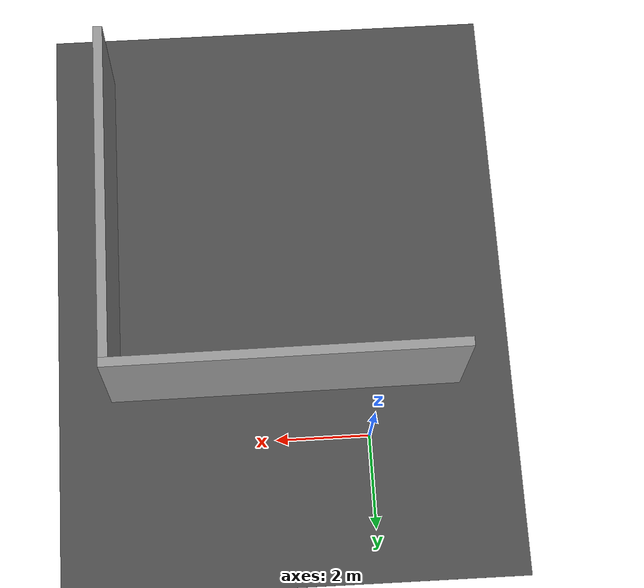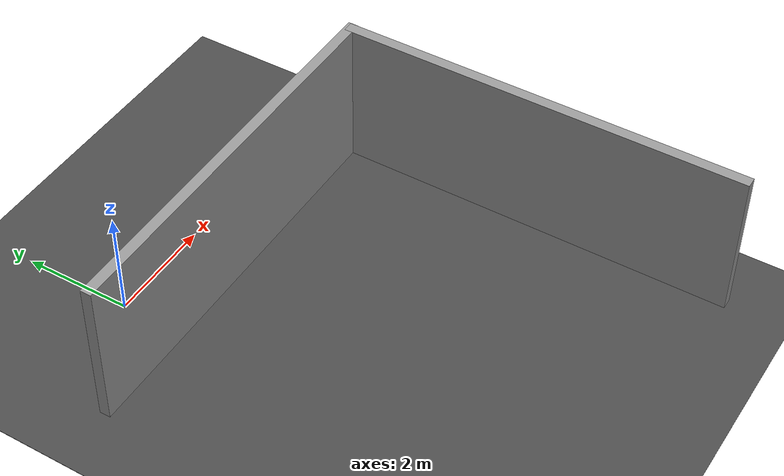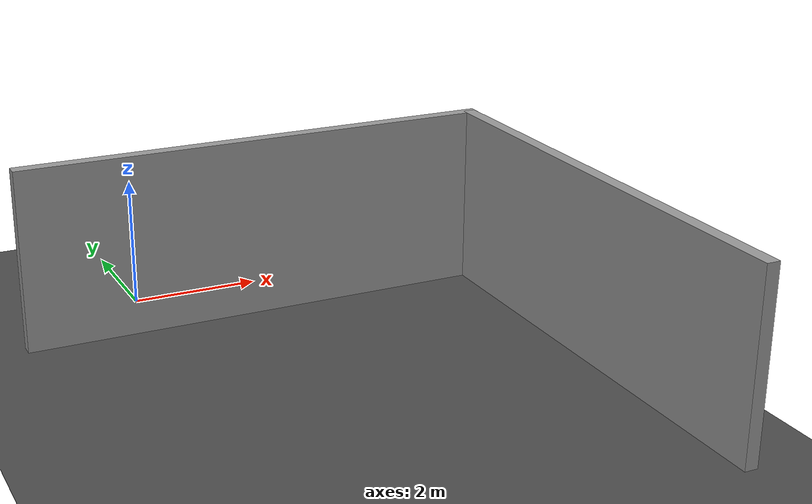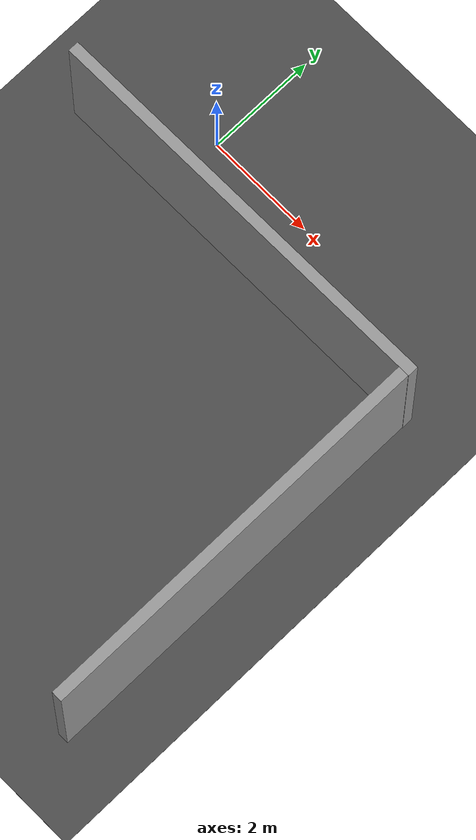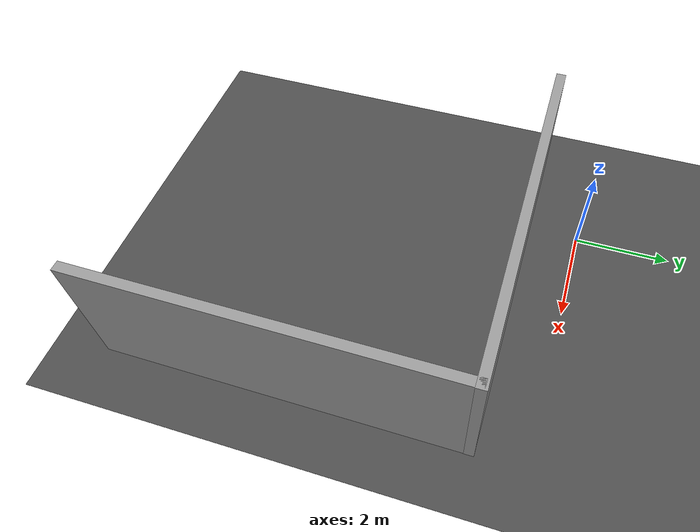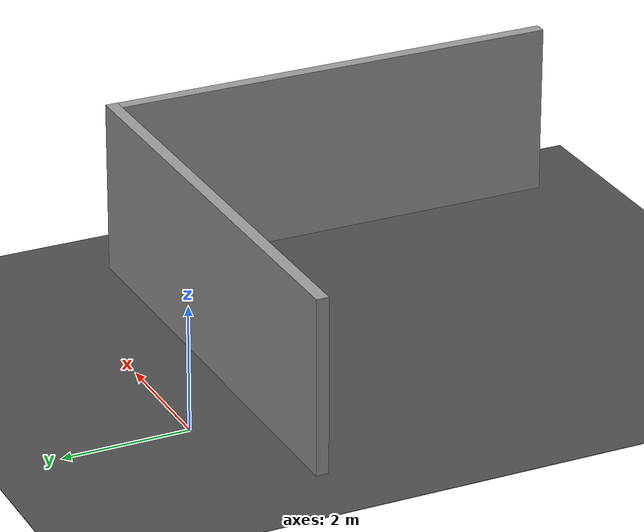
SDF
<sdf version="1.6">
 <world name="default">
  <plugin name="disable_physics" filename="libdisable_physics.so"/>
  <light name="sun" type="directional">
   <cast_shadows>0</cast_shadows>
   <pose>0 0 10 0 -0 0</pose>
   <diffuse>0.8 0.8 0.8 1</diffuse>
   <specular>0.2 0.2 0.2 1</specular>
   <attenuation>
    <range>1000</range>
    <constant>0.9</constant>
    <linear>0.01</linear>
    <quadratic>0.001</quadratic>
   </attenuation>
   <direction>-0.5 0.1 -0.9</direction>
  </light>
  <model name="asphalt_plane">
   <static>1</static>
   <link name="link">
    <collision name="collision"><geometry><box><size>9999.96 10000 0.01</size></box></geometry></collision>
    <visual name="visual">
     <cast_shadows>0</cast_shadows>
     <geometry><box><size>99.9996 100 0.01</size></box></geometry>
     <material>
      <script>
       <uri>file:///home/jtorde/Desktop/ws/src/acl-ros-extra-v2/acl_sim/urdf/grass/materials/scripts</uri>
       <uri>file:///home/jtorde/Desktop/ws/src/acl-ros-extra-v2/acl_sim/urdf/grass/materials/textures</uri>
       <name>vrc/asphalt</name>
      </script>
     </material>
    </visual>
   </link>
  </model>
  <physics name="default_physics" default="0" type="ode">
   <max_step_size>0.001</max_step_size>
   <real_time_factor>1</real_time_factor>
   <real_time_update_rate>1000</real_time_update_rate>
  </physics>
  <scene><ambient>0.4 0.4 0.4 1</ambient><background>0.7 0.7 0.7 1</background><shadows>0</shadows></scene>
  <spherical_coordinates>
   <surface_model>EARTH_WGS84</surface_model>
   <latitude_deg>0</latitude_deg>
   <longitude_deg>0</longitude_deg>
   <elevation>0</elevation>
   <heading_deg>0</heading_deg>
  </spherical_coordinates>
  <gravity>0 0 -9.8</gravity>
  <magnetic_field>6e-06 2.3e-05 -4.2e-05</magnetic_field>
  <atmosphere type="adiabatic"/>
  <model name="grey_wall_clone">
   <static>1</static>
   <link name="link">
    <pose>0 0 1.4 0 -0 0</pose>
    <collision name="collision"><geometry><box><size>7.5 0.2 2.8</size></box></geometry></collision>
    <visual name="visual">
     <cast_shadows>0</cast_shadows>
     <geometry><box><size>7.5 0.2 2.8</size></box></geometry>
     <material>
      <script>
       <uri>model://grey_wall/materials/scripts</uri>
       <uri>model://grey_wall/materials/textures</uri>
       <name>vrc/grey_wall</name>
      </script>
     </material>
    </visual>
   </link>
   <pose>5.36413 -4.82071 0 0 0 -1.57254</pose>
  </model>
  <model name="grey_wall_clone_1_clone_clone_0">
   <static>1</static>
   <link name="link">
    <pose>0 0 1.4 0 -0 0</pose>
    <collision name="collision"><geometry><box><size>7.5 0.2 2.8</size></box></geometry></collision>
    <visual name="visual">
     <cast_shadows>0</cast_shadows>
     <geometry><box><size>7.5 0.2 2.8</size></box></geometry>
     <material>
      <script>
       <uri>model://grey_wall/materials/scripts</uri>
       <uri>model://grey_wall/materials/textures</uri>
       <name>vrc/grey_wall</name>
      </script>
     </material>
    </visual>
   </link>
   <pose>1.72683 -1.14353 0 0 -0 0.005363</pose>
  </model>
 </world>
</sdf>
